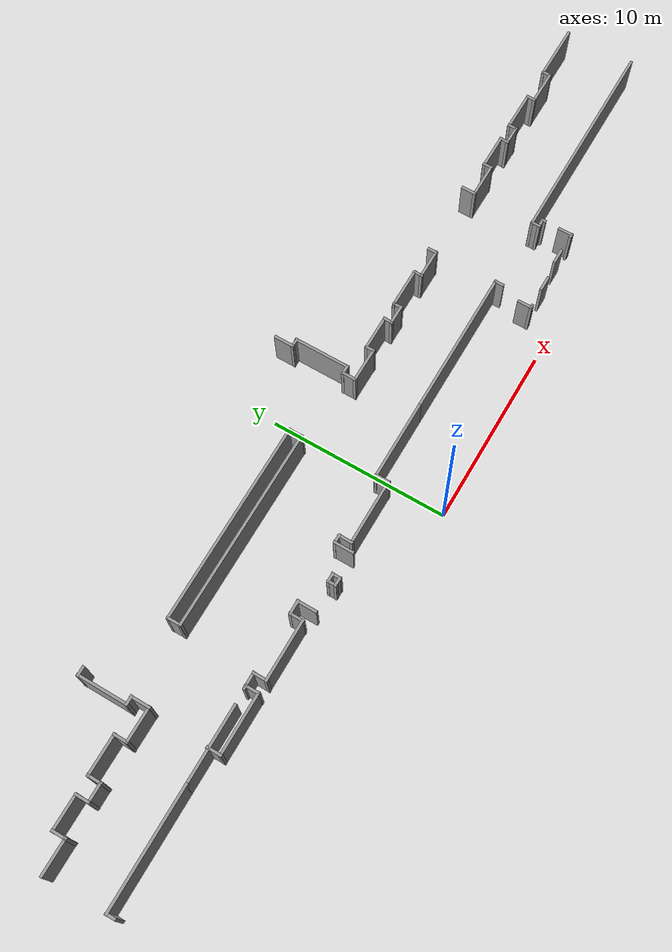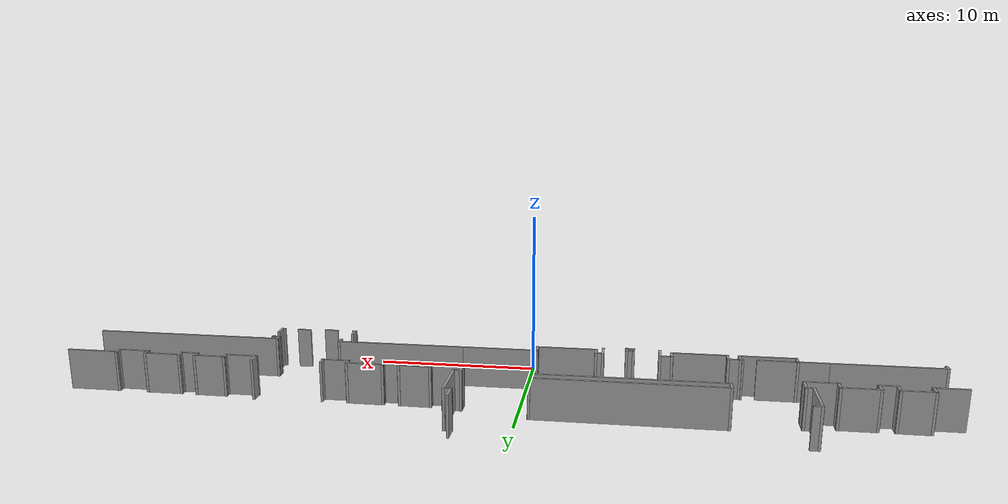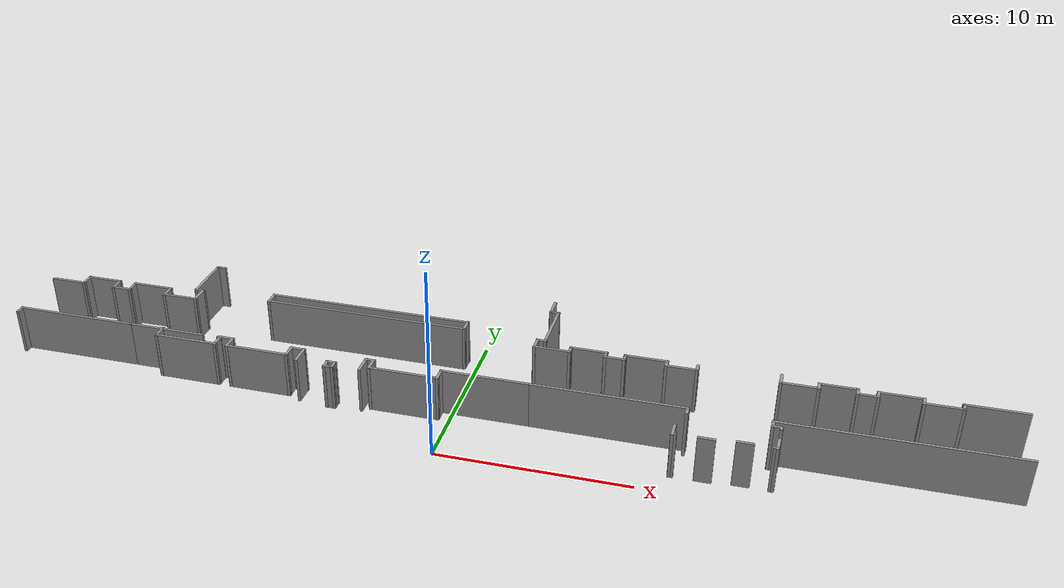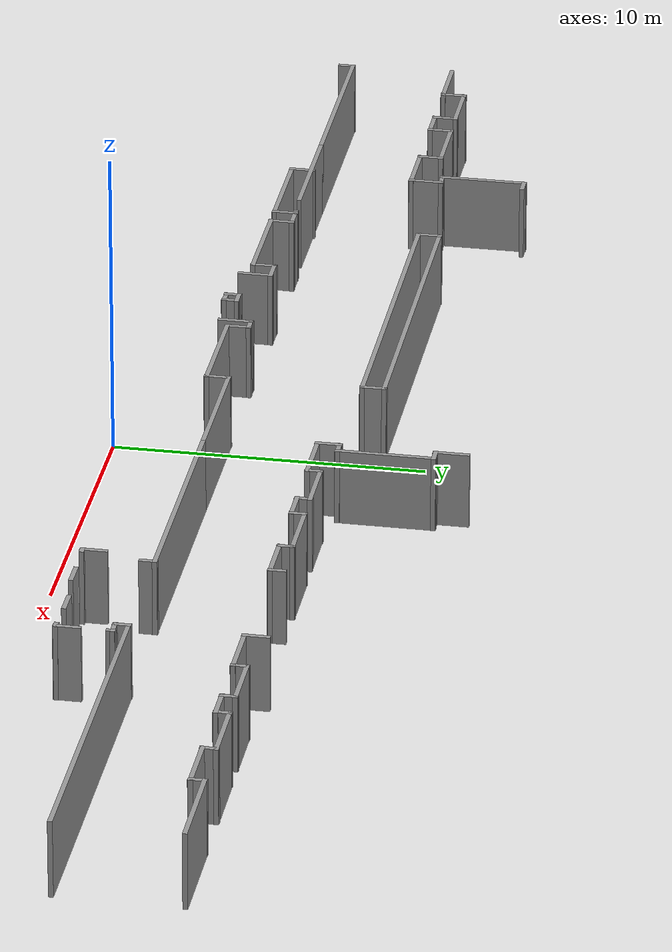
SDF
<sdf version="1.7">
 <model name="TD_n1">
  <pose>-8.28511 -2.84735 0 0 -0 0</pose>
  <link name="Wall_204">
   <collision name="Wall_204_Collision">
    <geometry><box><size>0.58 0.15 2.5</size></box></geometry>
    <pose>0 0 1.25 0 -0 0</pose>
   </collision>
   <visual name="Wall_204_Visual">
    <pose>0 0 1.25 0 -0 0</pose>
    <geometry><box><size>0.58 0.15 2.5</size></box></geometry>
    <material>
     <script><uri>file://media/materials/scripts/gazebo.material</uri><name>Gazebo/Grey</name></script>
     <ambient>1 1 1 1</ambient>
    </material>
    <meta><layer>0</layer></meta>
   </visual>
   <pose>-16.1202 6.23735 0 0 -0 1.5708</pose>
  </link>
  <link name="Wall_205">
   <collision name="Wall_205_Collision">
    <geometry><box><size>6.67 0.15 2.5</size></box></geometry>
    <pose>0 0 1.25 0 -0 0</pose>
   </collision>
   <visual name="Wall_205_Visual">
    <pose>0 0 1.25 0 -0 0</pose>
    <geometry><box><size>6.67 0.15 2.5</size></box></geometry>
    <material>
     <script><uri>file://media/materials/scripts/gazebo.material</uri><name>Gazebo/Grey</name></script>
     <ambient>1 1 1 1</ambient>
    </material>
    <meta><layer>0</layer></meta>
   </visual>
   <pose>-12.8722 6.44037 0 0 -0 0</pose>
  </link>
  <link name="Wall_208">
   <collision name="Wall_208_Collision">
    <geometry><box><size>2.03 0.15 2.5</size></box></geometry>
    <pose>0 0 1.25 0 -0 0</pose>
   </collision>
   <visual name="Wall_208_Visual">
    <pose>0 0 1.25 0 -0 0</pose>
    <geometry><box><size>2.03 0.15 2.5</size></box></geometry>
    <material>
     <script><uri>file://media/materials/scripts/gazebo.material</uri><name>Gazebo/Grey</name></script>
     <ambient>1 1 1 1</ambient>
    </material>
    <meta><layer>0</layer></meta>
   </visual>
   <pose>-15.3129 9.84606 0 0 -0 0</pose>
  </link>
  <link name="Wall_209">
   <collision name="Wall_209_Collision">
    <geometry><box><size>0.87 0.15 2.5</size></box></geometry>
    <pose>0 0 1.25 0 -0 0</pose>
   </collision>
   <visual name="Wall_209_Visual">
    <pose>0 0 1.25 0 -0 0</pose>
    <geometry><box><size>0.87 0.15 2.5</size></box></geometry>
    <material>
     <script><uri>file://media/materials/scripts/gazebo.material</uri><name>Gazebo/Grey</name></script>
     <ambient>1 1 1 1</ambient>
    </material>
    <meta><layer>0</layer></meta>
   </visual>
   <pose>-14.3849 10.1941 0 0 -0 1.5708</pose>
  </link>
  <link name="Wall_210">
   <collision name="Wall_210_Collision">
    <geometry><box><size>2.03 0.15 2.5</size></box></geometry>
    <pose>0 0 1.25 0 -0 0</pose>
   </collision>
   <visual name="Wall_210_Visual">
    <pose>0 0 1.25 0 -0 0</pose>
    <geometry><box><size>2.03 0.15 2.5</size></box></geometry>
    <material>
     <script><uri>file://media/materials/scripts/gazebo.material</uri><name>Gazebo/Grey</name></script>
     <ambient>1 1 1 1</ambient>
    </material>
    <meta><layer>0</layer></meta>
   </visual>
   <pose>-13.4569 10.5421 0 0 -0 0</pose>
  </link>
  <link name="Wall_211">
   <collision name="Wall_211_Collision">
    <geometry><box><size>0.87 0.15 2.5</size></box></geometry>
    <pose>0 0 1.25 0 -0 0</pose>
   </collision>
   <visual name="Wall_211_Visual">
    <pose>0 0 1.25 0 -0 0</pose>
    <geometry><box><size>0.87 0.15 2.5</size></box></geometry>
    <material>
     <script><uri>file://media/materials/scripts/gazebo.material</uri><name>Gazebo/Grey</name></script>
     <ambient>1 1 1 1</ambient>
    </material>
    <meta><layer>0</layer></meta>
   </visual>
   <pose>-12.5289 10.1941 0 0 -0 -1.5708</pose>
  </link>
  <link name="Wall_212">
   <collision name="Wall_212_Collision">
    <geometry><box><size>1.16 0.15 2.5</size></box></geometry>
    <pose>0 0 1.25 0 -0 0</pose>
   </collision>
   <visual name="Wall_212_Visual">
    <pose>0 0 1.25 0 -0 0</pose>
    <geometry><box><size>1.16 0.15 2.5</size></box></geometry>
    <material>
     <script><uri>file://media/materials/scripts/gazebo.material</uri><name>Gazebo/Grey</name></script>
     <ambient>1 1 1 1</ambient>
    </material>
    <meta><layer>0</layer></meta>
   </visual>
   <pose>-12.0359 9.84606 0 0 -0 0</pose>
  </link>
  <link name="Wall_213">
   <collision name="Wall_213_Collision">
    <geometry><box><size>0.87 0.15 2.5</size></box></geometry>
    <pose>0 0 1.25 0 -0 0</pose>
   </collision>
   <visual name="Wall_213_Visual">
    <pose>0 0 1.25 0 -0 0</pose>
    <geometry><box><size>0.87 0.15 2.5</size></box></geometry>
    <material>
     <script><uri>file://media/materials/scripts/gazebo.material</uri><name>Gazebo/Grey</name></script>
     <ambient>1 1 1 1</ambient>
    </material>
    <meta><layer>0</layer></meta>
   </visual>
   <pose>-11.5429 10.1941 0 0 -0 1.5708</pose>
  </link>
  <link name="Wall_214">
   <collision name="Wall_214_Collision">
    <geometry><box><size>2.32 0.15 2.5</size></box></geometry>
    <pose>0 0 1.25 0 -0 0</pose>
   </collision>
   <visual name="Wall_214_Visual">
    <pose>0 0 1.25 0 -0 0</pose>
    <geometry><box><size>2.32 0.15 2.5</size></box></geometry>
    <material>
     <script><uri>file://media/materials/scripts/gazebo.material</uri><name>Gazebo/Grey</name></script>
     <ambient>1 1 1 1</ambient>
    </material>
    <meta><layer>0</layer></meta>
   </visual>
   <pose>-10.4699 10.5421 0 0 -0 0</pose>
  </link>
  <link name="Wall_215">
   <collision name="Wall_215_Collision">
    <geometry><box><size>0.87 0.15 2.5</size></box></geometry>
    <pose>0 0 1.25 0 -0 0</pose>
   </collision>
   <visual name="Wall_215_Visual">
    <pose>0 0 1.25 0 -0 0</pose>
    <geometry><box><size>0.87 0.15 2.5</size></box></geometry>
    <material>
     <script><uri>file://media/materials/scripts/gazebo.material</uri><name>Gazebo/Grey</name></script>
     <ambient>1 1 1 1</ambient>
    </material>
    <meta><layer>0</layer></meta>
   </visual>
   <pose>-9.39689 10.1941 0 0 -0 -1.5708</pose>
  </link>
  <link name="Wall_216">
   <collision name="Wall_216_Collision">
    <geometry><box><size>2.03 0.15 2.5</size></box></geometry>
    <pose>0 0 1.25 0 -0 0</pose>
   </collision>
   <visual name="Wall_216_Visual">
    <pose>0 0 1.25 0 -0 0</pose>
    <geometry><box><size>2.03 0.15 2.5</size></box></geometry>
    <material>
     <script><uri>file://media/materials/scripts/gazebo.material</uri><name>Gazebo/Grey</name></script>
     <ambient>1 1 1 1</ambient>
    </material>
    <meta><layer>0</layer></meta>
   </visual>
   <pose>-8.46889 9.84606 0 0 -0 0</pose>
  </link>
  <link name="Wall_218">
   <collision name="Wall_218_Collision">
    <geometry><box><size>4.35 0.15 2.5</size></box></geometry>
    <pose>0 0 1.25 0 -0 0</pose>
   </collision>
   <visual name="Wall_218_Visual">
    <pose>0 0 1.25 0 -0 0</pose>
    <geometry><box><size>4.35 0.15 2.5</size></box></geometry>
    <material>
     <script><uri>file://media/materials/scripts/gazebo.material</uri><name>Gazebo/Grey</name></script>
     <ambient>1 1 1 1</ambient>
    </material>
    <meta><layer>0</layer></meta>
   </visual>
   <pose>-7.53615 6.44037 0 0 -0 0</pose>
  </link>
  <link name="Wall_220">
   <collision name="Wall_220_Collision">
    <geometry><box><size>0.87 0.15 2.5</size></box></geometry>
    <pose>0 0 1.25 0 -0 0</pose>
   </collision>
   <visual name="Wall_220_Visual">
    <pose>0 0 1.25 0 -0 0</pose>
    <geometry><box><size>0.87 0.15 2.5</size></box></geometry>
    <material>
     <script><uri>file://media/materials/scripts/gazebo.material</uri><name>Gazebo/Grey</name></script>
     <ambient>1 1 1 1</ambient>
    </material>
    <meta><layer>0</layer></meta>
   </visual>
   <pose>-7.72189 6.1425 0 0 -0 -1.5708</pose>
  </link>
  <link name="Wall_221">
   <collision name="Wall_221_Collision">
    <geometry><box><size>3.48 0.15 2.5</size></box></geometry>
    <pose>0 0 1.25 0 -0 0</pose>
   </collision>
   <visual name="Wall_221_Visual">
    <pose>0 0 1.25 0 -0 0</pose>
    <geometry><box><size>3.48 0.15 2.5</size></box></geometry>
    <material>
     <script><uri>file://media/materials/scripts/gazebo.material</uri><name>Gazebo/Grey</name></script>
     <ambient>1 1 1 1</ambient>
    </material>
    <meta><layer>0</layer></meta>
   </visual>
   <pose>-6.06889 5.7945 0 0 -0 0</pose>
  </link>
  <link name="Wall_222">
   <collision name="Wall_222_Collision">
    <geometry><box><size>0.87 0.15 2.5</size></box></geometry>
    <pose>0 0 1.25 0 -0 0</pose>
   </collision>
   <visual name="Wall_222_Visual">
    <pose>0 0 1.25 0 -0 0</pose>
    <geometry><box><size>0.87 0.15 2.5</size></box></geometry>
    <material>
     <script><uri>file://media/materials/scripts/gazebo.material</uri><name>Gazebo/Grey</name></script>
     <ambient>1 1 1 1</ambient>
    </material>
    <meta><layer>0</layer></meta>
   </visual>
   <pose>-4.41589 6.1425 0 0 -0 1.5708</pose>
  </link>
  <link name="Wall_223">
   <collision name="Wall_223_Collision">
    <geometry><box><size>0.29 0.15 2.5</size></box></geometry>
    <pose>0 0 1.25 0 -0 0</pose>
   </collision>
   <visual name="Wall_223_Visual">
    <pose>0 0 1.25 0 -0 0</pose>
    <geometry><box><size>0.29 0.15 2.5</size></box></geometry>
    <material>
     <script><uri>file://media/materials/scripts/gazebo.material</uri><name>Gazebo/Grey</name></script>
     <ambient>1 1 1 1</ambient>
    </material>
    <meta><layer>0</layer></meta>
   </visual>
   <pose>-4.47389 6.49049 0 0 -0 3.14159</pose>
  </link>
  <link name="Wall_225">
   <collision name="Wall_225_Collision">
    <geometry><box><size>1.16 0.15 2.5</size></box></geometry>
    <pose>0 0 1.25 0 -0 0</pose>
   </collision>
   <visual name="Wall_225_Visual">
    <pose>0 0 1.25 0 -0 0</pose>
    <geometry><box><size>1.16 0.15 2.5</size></box></geometry>
    <material>
     <script><uri>file://media/materials/scripts/gazebo.material</uri><name>Gazebo/Grey</name></script>
     <ambient>1 1 1 1</ambient>
    </material>
    <meta><layer>0</layer></meta>
   </visual>
   <pose>-7.54089 10.3391 0 0 -0 1.5708</pose>
  </link>
  <link name="Wall_226">
   <collision name="Wall_226_Collision">
    <geometry><box><size>0.58 0.15 2.5</size></box></geometry>
    <pose>0 0 1.25 0 -0 0</pose>
   </collision>
   <visual name="Wall_226_Visual">
    <pose>0 0 1.25 0 -0 0</pose>
    <geometry><box><size>0.58 0.15 2.5</size></box></geometry>
    <material>
     <script><uri>file://media/materials/scripts/gazebo.material</uri><name>Gazebo/Grey</name></script>
     <ambient>1 1 1 1</ambient>
    </material>
    <meta><layer>0</layer></meta>
   </visual>
   <pose>-7.74389 10.8321 0 0 -0 3.14159</pose>
  </link>
  <link name="Wall_227">
   <collision name="Wall_227_Collision">
    <geometry><box><size>2.9 0.15 2.5</size></box></geometry>
    <pose>0 0 1.25 0 -0 0</pose>
   </collision>
   <visual name="Wall_227_Visual">
    <pose>0 0 1.25 0 -0 0</pose>
    <geometry><box><size>2.9 0.15 2.5</size></box></geometry>
    <material>
     <script><uri>file://media/materials/scripts/gazebo.material</uri><name>Gazebo/Grey</name></script>
     <ambient>1 1 1 1</ambient>
    </material>
    <meta><layer>0</layer></meta>
   </visual>
   <pose>-7.94689 12.1951 0 0 -0 1.5708</pose>
  </link>
  <link name="Wall_228">
   <collision name="Wall_228_Collision">
    <geometry><box><size>0.58 0.15 2.5</size></box></geometry>
    <pose>0 0 1.25 0 -0 0</pose>
   </collision>
   <visual name="Wall_228_Visual">
    <pose>0 0 1.25 0 -0 0</pose>
    <geometry><box><size>0.58 0.15 2.5</size></box></geometry>
    <material>
     <script><uri>file://media/materials/scripts/gazebo.material</uri><name>Gazebo/Grey</name></script>
     <ambient>1 1 1 1</ambient>
    </material>
    <meta><layer>0</layer></meta>
   </visual>
   <pose>-7.74389 13.5581 0 0 -0 0</pose>
  </link>
  <link name="Wall_230">
   <collision name="Wall_230_Collision">
    <geometry><box><size>0.87 0.15 2.5</size></box></geometry>
    <pose>0 0 1.25 0 -0 0</pose>
   </collision>
   <visual name="Wall_230_Visual">
    <pose>0 0 1.25 0 -0 0</pose>
    <geometry><box><size>0.87 0.15 2.5</size></box></geometry>
    <material>
     <script><uri>file://media/materials/scripts/gazebo.material</uri><name>Gazebo/Grey</name></script>
     <ambient>1 1 1 1</ambient>
    </material>
    <meta><layer>0</layer></meta>
   </visual>
   <pose>-4.06789 6.49049 0 0 -0 0</pose>
  </link>
  <link name="Wall_231">
   <collision name="Wall_231_Collision">
    <geometry><box><size>0.87 0.15 2.5</size></box></geometry>
    <pose>0 0 1.25 0 -0 0</pose>
   </collision>
   <visual name="Wall_231_Visual">
    <pose>0 0 1.25 0 -0 0</pose>
    <geometry><box><size>0.87 0.15 2.5</size></box></geometry>
    <material>
     <script><uri>file://media/materials/scripts/gazebo.material</uri><name>Gazebo/Grey</name></script>
     <ambient>1 1 1 1</ambient>
    </material>
    <meta><layer>0</layer></meta>
   </visual>
   <pose>-3.71989 6.1425 0 0 -0 -1.5708</pose>
  </link>
  <link name="Wall_232">
   <collision name="Wall_232_Collision">
    <geometry><box><size>3.48 0.15 2.5</size></box></geometry>
    <pose>0 0 1.25 0 -0 0</pose>
   </collision>
   <visual name="Wall_232_Visual">
    <pose>0 0 1.25 0 -0 0</pose>
    <geometry><box><size>3.48 0.15 2.5</size></box></geometry>
    <material>
     <script><uri>file://media/materials/scripts/gazebo.material</uri><name>Gazebo/Grey</name></script>
     <ambient>1 1 1 1</ambient>
    </material>
    <meta><layer>0</layer></meta>
   </visual>
   <pose>-2.06689 5.7945 0 0 -0 0</pose>
  </link>
  <link name="Wall_233">
   <collision name="Wall_233_Collision">
    <geometry><box><size>0.87 0.15 2.5</size></box></geometry>
    <pose>0 0 1.25 0 -0 0</pose>
   </collision>
   <visual name="Wall_233_Visual">
    <pose>0 0 1.25 0 -0 0</pose>
    <geometry><box><size>0.87 0.15 2.5</size></box></geometry>
    <material>
     <script><uri>file://media/materials/scripts/gazebo.material</uri><name>Gazebo/Grey</name></script>
     <ambient>1 1 1 1</ambient>
    </material>
    <meta><layer>0</layer></meta>
   </visual>
   <pose>-0.413887 6.1425 0 0 -0 1.5708</pose>
  </link>
  <link name="Wall_234">
   <collision name="Wall_234_Collision">
    <geometry><box><size>0.87 0.15 2.5</size></box></geometry>
    <pose>0 0 1.25 0 -0 0</pose>
   </collision>
   <visual name="Wall_234_Visual">
    <pose>0 0 1.25 0 -0 0</pose>
    <geometry><box><size>0.87 0.15 2.5</size></box></geometry>
    <material>
     <script><uri>file://media/materials/scripts/gazebo.material</uri><name>Gazebo/Grey</name></script>
     <ambient>1 1 1 1</ambient>
    </material>
    <meta><layer>0</layer></meta>
   </visual>
   <pose>-0.0658868 6.49049 0 0 -0 0</pose>
  </link>
  <link name="Wall_235">
   <collision name="Wall_235_Collision">
    <geometry><box><size>1.16 0.15 2.5</size></box></geometry>
    <pose>0 0 1.25 0 -0 0</pose>
   </collision>
   <visual name="Wall_235_Visual">
    <pose>0 0 1.25 0 -0 0</pose>
    <geometry><box><size>1.16 0.15 2.5</size></box></geometry>
    <material>
     <script><uri>file://media/materials/scripts/gazebo.material</uri><name>Gazebo/Grey</name></script>
     <ambient>1 1 1 1</ambient>
    </material>
    <meta><layer>0</layer></meta>
   </visual>
   <pose>0.282113 5.9975 0 0 -0 -1.5708</pose>
  </link>
  <link name="Wall_237">
   <collision name="Wall_237_Collision">
    <geometry><box><size>0.58 0.15 2.5</size></box></geometry>
    <pose>0 0 1.25 0 -0 0</pose>
   </collision>
   <visual name="Wall_237_Visual">
    <pose>0 0 1.25 0 -0 0</pose>
    <geometry><box><size>0.58 0.15 2.5</size></box></geometry>
    <material>
     <script><uri>file://media/materials/scripts/gazebo.material</uri><name>Gazebo/Grey</name></script>
     <ambient>1 1 1 1</ambient>
    </material>
    <meta><layer>0</layer></meta>
   </visual>
   <pose>2.0707 5.73809 0 0 -0 0</pose>
  </link>
  <link name="Wall_238">
   <collision name="Wall_238_Collision">
    <geometry><box><size>0.58 0.15 2.5</size></box></geometry>
    <pose>0 0 1.25 0 -0 0</pose>
   </collision>
   <visual name="Wall_238_Visual">
    <pose>0 0 1.25 0 -0 0</pose>
    <geometry><box><size>0.58 0.15 2.5</size></box></geometry>
    <material>
     <script><uri>file://media/materials/scripts/gazebo.material</uri><name>Gazebo/Grey</name></script>
     <ambient>1 1 1 1</ambient>
    </material>
    <meta><layer>0</layer></meta>
   </visual>
   <pose>2.2737 5.53509 0 0 -0 -1.5708</pose>
  </link>
  <link name="Wall_239">
   <collision name="Wall_239_Collision">
    <geometry><box><size>0.58 0.15 2.5</size></box></geometry>
    <pose>0 0 1.25 0 -0 0</pose>
   </collision>
   <visual name="Wall_239_Visual">
    <pose>0 0 1.25 0 -0 0</pose>
    <geometry><box><size>0.58 0.15 2.5</size></box></geometry>
    <material>
     <script><uri>file://media/materials/scripts/gazebo.material</uri><name>Gazebo/Grey</name></script>
     <ambient>1 1 1 1</ambient>
    </material>
    <meta><layer>0</layer></meta>
   </visual>
   <pose>2.0707 5.33209 0 0 -0 3.14159</pose>
  </link>
  <link name="Wall_240">
   <collision name="Wall_240_Collision">
    <geometry><box><size>0.58 0.15 2.5</size></box></geometry>
    <pose>0 0 1.25 0 -0 0</pose>
   </collision>
   <visual name="Wall_240_Visual">
    <pose>0 0 1.25 0 -0 0</pose>
    <geometry><box><size>0.58 0.15 2.5</size></box></geometry>
    <material>
     <script><uri>file://media/materials/scripts/gazebo.material</uri><name>Gazebo/Grey</name></script>
     <ambient>1 1 1 1</ambient>
    </material>
    <meta><layer>0</layer></meta>
   </visual>
   <pose>1.8677 5.53509 0 0 -0 1.5708</pose>
  </link>
  <link name="Wall_242">
   <collision name="Wall_242_Collision">
    <geometry><box><size>1.16 0.15 2.5</size></box></geometry>
    <pose>0 0 1.25 0 -0 0</pose>
   </collision>
   <visual name="Wall_242_Visual">
    <pose>0 0 1.25 0 -0 0</pose>
    <geometry><box><size>1.16 0.15 2.5</size></box></geometry>
    <material>
     <script><uri>file://media/materials/scripts/gazebo.material</uri><name>Gazebo/Grey</name></script>
     <ambient>1 1 1 1</ambient>
    </material>
    <meta><layer>0</layer></meta>
   </visual>
   <pose>3.69517 5.96495 0 0 -0 1.5708</pose>
  </link>
  <link name="Wall_243">
   <collision name="Wall_243_Collision">
    <geometry><box><size>0.58 0.15 2.5</size></box></geometry>
    <pose>0 0 1.25 0 -0 0</pose>
   </collision>
   <visual name="Wall_243_Visual">
    <pose>0 0 1.25 0 -0 0</pose>
    <geometry><box><size>0.58 0.15 2.5</size></box></geometry>
    <material>
     <script><uri>file://media/materials/scripts/gazebo.material</uri><name>Gazebo/Grey</name></script>
     <ambient>1 1 1 1</ambient>
    </material>
    <meta><layer>0</layer></meta>
   </visual>
   <pose>3.89817 6.45795 0 0 -0 0</pose>
  </link>
  <link name="Wall_244">
   <collision name="Wall_244_Collision">
    <geometry><box><size>0.87 0.15 2.5</size></box></geometry>
    <pose>0 0 1.25 0 -0 0</pose>
   </collision>
   <visual name="Wall_244_Visual">
    <pose>0 0 1.25 0 -0 0</pose>
    <geometry><box><size>0.87 0.15 2.5</size></box></geometry>
    <material>
     <script><uri>file://media/materials/scripts/gazebo.material</uri><name>Gazebo/Grey</name></script>
     <ambient>1 1 1 1</ambient>
    </material>
    <meta><layer>0</layer></meta>
   </visual>
   <pose>4.10117 6.10995 0 0 -0 -1.5708</pose>
  </link>
  <link name="Wall_245">
   <collision name="Wall_245_Collision">
    <geometry><box><size>3.77 0.15 2.5</size></box></geometry>
    <pose>0 0 1.25 0 -0 0</pose>
   </collision>
   <visual name="Wall_245_Visual">
    <pose>0 0 1.25 0 -0 0</pose>
    <geometry><box><size>3.77 0.15 2.5</size></box></geometry>
    <material>
     <script><uri>file://media/materials/scripts/gazebo.material</uri><name>Gazebo/Grey</name></script>
     <ambient>1 1 1 1</ambient>
    </material>
    <meta><layer>0</layer></meta>
   </visual>
   <pose>5.89917 5.76195 0 0 -0 0</pose>
  </link>
  <link name="Wall_246">
   <collision name="Wall_246_Collision">
    <geometry><box><size>0.87 0.15 2.5</size></box></geometry>
    <pose>0 0 1.25 0 -0 0</pose>
   </collision>
   <visual name="Wall_246_Visual">
    <pose>0 0 1.25 0 -0 0</pose>
    <geometry><box><size>0.87 0.15 2.5</size></box></geometry>
    <material>
     <script><uri>file://media/materials/scripts/gazebo.material</uri><name>Gazebo/Grey</name></script>
     <ambient>1 1 1 1</ambient>
    </material>
    <meta><layer>0</layer></meta>
   </visual>
   <pose>7.69717 6.10995 0 0 -0 1.5708</pose>
  </link>
  <link name="Wall_247">
   <collision name="Wall_247_Collision">
    <geometry><box><size>4.64 0.15 2.5</size></box></geometry>
    <pose>0 0 1.25 0 -0 0</pose>
   </collision>
   <visual name="Wall_247_Visual">
    <pose>0 0 1.25 0 -0 0</pose>
    <geometry><box><size>4.64 0.15 2.5</size></box></geometry>
    <material>
     <script><uri>file://media/materials/scripts/gazebo.material</uri><name>Gazebo/Grey</name></script>
     <ambient>1 1 1 1</ambient>
    </material>
    <meta><layer>0</layer></meta>
   </visual>
   <pose>9.93017 6.45795 0 0 -0 0</pose>
  </link>
  <link name="Wall_249">
   <collision name="Wall_249_Collision">
    <geometry><box><size>0.87 0.15 2.5</size></box></geometry>
    <pose>0 0 1.25 0 -0 0</pose>
   </collision>
   <visual name="Wall_249_Visual">
    <pose>0 0 1.25 0 -0 0</pose>
    <geometry><box><size>0.87 0.15 2.5</size></box></geometry>
    <material>
     <script><uri>file://media/materials/scripts/gazebo.material</uri><name>Gazebo/Grey</name></script>
     <ambient>1 1 1 1</ambient>
    </material>
    <meta><layer>0</layer></meta>
   </visual>
   <pose>-3.52596 11.0717 0 0 -0 1.5708</pose>
  </link>
  <link name="Wall_250">
   <collision name="Wall_250_Collision">
    <geometry><box><size>11.31 0.15 2.5</size></box></geometry>
    <pose>0 0 1.25 0 -0 0</pose>
   </collision>
   <visual name="Wall_250_Visual">
    <pose>0 0 1.25 0 -0 0</pose>
    <geometry><box><size>11.31 0.15 2.5</size></box></geometry>
    <material>
     <script><uri>file://media/materials/scripts/gazebo.material</uri><name>Gazebo/Grey</name></script>
     <ambient>1 1 1 1</ambient>
    </material>
    <meta><layer>0</layer></meta>
   </visual>
   <pose>2.04204 11.4197 0 0 -0 0</pose>
  </link>
  <link name="Wall_251">
   <collision name="Wall_251_Collision">
    <geometry><box><size>0.87 0.15 2.5</size></box></geometry>
    <pose>0 0 1.25 0 -0 0</pose>
   </collision>
   <visual name="Wall_251_Visual">
    <pose>0 0 1.25 0 -0 0</pose>
    <geometry><box><size>0.87 0.15 2.5</size></box></geometry>
    <material>
     <script><uri>file://media/materials/scripts/gazebo.material</uri><name>Gazebo/Grey</name></script>
     <ambient>1 1 1 1</ambient>
    </material>
    <meta><layer>0</layer></meta>
   </visual>
   <pose>7.61004 11.0717 0 0 -0 -1.5708</pose>
  </link>
  <link name="Wall_252">
   <collision name="Wall_252_Collision">
    <geometry><box><size>11.31 0.15 2.5</size></box></geometry>
    <pose>0 0 1.25 0 -0 0</pose>
   </collision>
   <visual name="Wall_252_Visual">
    <pose>0 0 1.25 0 -0 0</pose>
    <geometry><box><size>11.31 0.15 2.5</size></box></geometry>
    <material>
     <script><uri>file://media/materials/scripts/gazebo.material</uri><name>Gazebo/Grey</name></script>
     <ambient>1 1 1 1</ambient>
    </material>
    <meta><layer>0</layer></meta>
   </visual>
   <pose>2.04204 10.7237 0 0 -0 3.14159</pose>
  </link>
  <link name="Wall_254">
   <collision name="Wall_254_Collision">
    <geometry><box><size>1.16 0.15 2.5</size></box></geometry>
    <pose>0 0 1.25 0 -0 0</pose>
   </collision>
   <visual name="Wall_254_Visual">
    <pose>0 0 1.25 0 -0 0</pose>
    <geometry><box><size>1.16 0.15 2.5</size></box></geometry>
    <material>
     <script><uri>file://media/materials/scripts/gazebo.material</uri><name>Gazebo/Grey</name></script>
     <ambient>1 1 1 1</ambient>
    </material>
    <meta><layer>0</layer></meta>
   </visual>
   <pose>11.626 14.1873 0 0 -0 -1.5708</pose>
  </link>
  <link name="Wall_255">
   <collision name="Wall_255_Collision">
    <geometry><box><size>0.58 0.15 2.5</size></box></geometry>
    <pose>0 0 1.25 0 -0 0</pose>
   </collision>
   <visual name="Wall_255_Visual">
    <pose>0 0 1.25 0 -0 0</pose>
    <geometry><box><size>0.58 0.15 2.5</size></box></geometry>
    <material>
     <script><uri>file://media/materials/scripts/gazebo.material</uri><name>Gazebo/Grey</name></script>
     <ambient>1 1 1 1</ambient>
    </material>
    <meta><layer>0</layer></meta>
   </visual>
   <pose>11.829 13.6943 0 0 -0 0</pose>
  </link>
  <link name="Wall_256">
   <collision name="Wall_256_Collision">
    <geometry><box><size>3.19 0.15 2.5</size></box></geometry>
    <pose>0 0 1.25 0 -0 0</pose>
   </collision>
   <visual name="Wall_256_Visual">
    <pose>0 0 1.25 0 -0 0</pose>
    <geometry><box><size>3.19 0.15 2.5</size></box></geometry>
    <material>
     <script><uri>file://media/materials/scripts/gazebo.material</uri><name>Gazebo/Grey</name></script>
     <ambient>1 1 1 1</ambient>
    </material>
    <meta><layer>0</layer></meta>
   </visual>
   <pose>12.032 12.1863 0 0 -0 -1.5708</pose>
  </link>
  <link name="Wall_257">
   <collision name="Wall_257_Collision">
    <geometry><box><size>0.58 0.15 2.5</size></box></geometry>
    <pose>0 0 1.25 0 -0 0</pose>
   </collision>
   <visual name="Wall_257_Visual">
    <pose>0 0 1.25 0 -0 0</pose>
    <geometry><box><size>0.58 0.15 2.5</size></box></geometry>
    <material>
     <script><uri>file://media/materials/scripts/gazebo.material</uri><name>Gazebo/Grey</name></script>
     <ambient>1 1 1 1</ambient>
    </material>
    <meta><layer>0</layer></meta>
   </visual>
   <pose>11.829 10.6782 0 0 -0 3.14159</pose>
  </link>
  <link name="Wall_258">
   <collision name="Wall_258_Collision">
    <geometry><box><size>0.87 0.15 2.5</size></box></geometry>
    <pose>0 0 1.25 0 -0 0</pose>
   </collision>
   <visual name="Wall_258_Visual">
    <pose>0 0 1.25 0 -0 0</pose>
    <geometry><box><size>0.87 0.15 2.5</size></box></geometry>
    <material>
     <script><uri>file://media/materials/scripts/gazebo.material</uri><name>Gazebo/Grey</name></script>
     <ambient>1 1 1 1</ambient>
    </material>
    <meta><layer>0</layer></meta>
   </visual>
   <pose>11.626 10.3302 0 0 -0 -1.5708</pose>
  </link>
  <link name="Wall_259">
   <collision name="Wall_259_Collision">
    <geometry><box><size>2.03 0.15 2.5</size></box></geometry>
    <pose>0 0 1.25 0 -0 0</pose>
   </collision>
   <visual name="Wall_259_Visual">
    <pose>0 0 1.25 0 -0 0</pose>
    <geometry><box><size>2.03 0.15 2.5</size></box></geometry>
    <material>
     <script><uri>file://media/materials/scripts/gazebo.material</uri><name>Gazebo/Grey</name></script>
     <ambient>1 1 1 1</ambient>
    </material>
    <meta><layer>0</layer></meta>
   </visual>
   <pose>12.554 9.98223 0 0 -0 0</pose>
  </link>
  <link name="Wall_260">
   <collision name="Wall_260_Collision">
    <geometry><box><size>0.58 0.15 2.5</size></box></geometry>
    <pose>0 0 1.25 0 -0 0</pose>
   </collision>
   <visual name="Wall_260_Visual">
    <pose>0 0 1.25 0 -0 0</pose>
    <geometry><box><size>0.58 0.15 2.5</size></box></geometry>
    <material>
     <script><uri>file://media/materials/scripts/gazebo.material</uri><name>Gazebo/Grey</name></script>
     <ambient>1 1 1 1</ambient>
    </material>
    <meta><layer>0</layer></meta>
   </visual>
   <pose>13.482 10.1852 0 0 -0 1.5708</pose>
  </link>
  <link name="Wall_261">
   <collision name="Wall_261_Collision">
    <geometry><box><size>2.03 0.15 2.5</size></box></geometry>
    <pose>0 0 1.25 0 -0 0</pose>
   </collision>
   <visual name="Wall_261_Visual">
    <pose>0 0 1.25 0 -0 0</pose>
    <geometry><box><size>2.03 0.15 2.5</size></box></geometry>
    <material>
     <script><uri>file://media/materials/scripts/gazebo.material</uri><name>Gazebo/Grey</name></script>
     <ambient>1 1 1 1</ambient>
    </material>
    <meta><layer>0</layer></meta>
   </visual>
   <pose>14.41 10.3882 0 0 -0 0</pose>
  </link>
  <link name="Wall_262">
   <collision name="Wall_262_Collision">
    <geometry><box><size>0.58 0.15 2.5</size></box></geometry>
    <pose>0 0 1.25 0 -0 0</pose>
   </collision>
   <visual name="Wall_262_Visual">
    <pose>0 0 1.25 0 -0 0</pose>
    <geometry><box><size>0.58 0.15 2.5</size></box></geometry>
    <material>
     <script><uri>file://media/materials/scripts/gazebo.material</uri><name>Gazebo/Grey</name></script>
     <ambient>1 1 1 1</ambient>
    </material>
    <meta><layer>0</layer></meta>
   </visual>
   <pose>15.338 10.1852 0 0 -0 -1.5708</pose>
  </link>
  <link name="Wall_263">
   <collision name="Wall_263_Collision">
    <geometry><box><size>1.16 0.15 2.5</size></box></geometry>
    <pose>0 0 1.25 0 -0 0</pose>
   </collision>
   <visual name="Wall_263_Visual">
    <pose>0 0 1.25 0 -0 0</pose>
    <geometry><box><size>1.16 0.15 2.5</size></box></geometry>
    <material>
     <script><uri>file://media/materials/scripts/gazebo.material</uri><name>Gazebo/Grey</name></script>
     <ambient>1 1 1 1</ambient>
    </material>
    <meta><layer>0</layer></meta>
   </visual>
   <pose>15.831 9.98223 0 0 -0 0</pose>
  </link>
  <link name="Wall_264">
   <collision name="Wall_264_Collision">
    <geometry><box><size>0.58 0.15 2.5</size></box></geometry>
    <pose>0 0 1.25 0 -0 0</pose>
   </collision>
   <visual name="Wall_264_Visual">
    <pose>0 0 1.25 0 -0 0</pose>
    <geometry><box><size>0.58 0.15 2.5</size></box></geometry>
    <material>
     <script><uri>file://media/materials/scripts/gazebo.material</uri><name>Gazebo/Grey</name></script>
     <ambient>1 1 1 1</ambient>
    </material>
    <meta><layer>0</layer></meta>
   </visual>
   <pose>16.324 10.1852 0 0 -0 1.5708</pose>
  </link>
  <link name="Wall_265">
   <collision name="Wall_265_Collision">
    <geometry><box><size>2.32 0.15 2.5</size></box></geometry>
    <pose>0 0 1.25 0 -0 0</pose>
   </collision>
   <visual name="Wall_265_Visual">
    <pose>0 0 1.25 0 -0 0</pose>
    <geometry><box><size>2.32 0.15 2.5</size></box></geometry>
    <material>
     <script><uri>file://media/materials/scripts/gazebo.material</uri><name>Gazebo/Grey</name></script>
     <ambient>1 1 1 1</ambient>
    </material>
    <meta><layer>0</layer></meta>
   </visual>
   <pose>17.397 10.3882 0 0 -0 0</pose>
  </link>
  <link name="Wall_266">
   <collision name="Wall_266_Collision">
    <geometry><box><size>0.58 0.15 2.5</size></box></geometry>
    <pose>0 0 1.25 0 -0 0</pose>
   </collision>
   <visual name="Wall_266_Visual">
    <pose>0 0 1.25 0 -0 0</pose>
    <geometry><box><size>0.58 0.15 2.5</size></box></geometry>
    <material>
     <script><uri>file://media/materials/scripts/gazebo.material</uri><name>Gazebo/Grey</name></script>
     <ambient>1 1 1 1</ambient>
    </material>
    <meta><layer>0</layer></meta>
   </visual>
   <pose>18.47 10.1852 0 0 -0 -1.5708</pose>
  </link>
  <link name="Wall_267">
   <collision name="Wall_267_Collision">
    <geometry><box><size>1.74 0.15 2.5</size></box></geometry>
    <pose>0 0 1.25 0 -0 0</pose>
   </collision>
   <visual name="Wall_267_Visual">
    <pose>0 0 1.25 0 -0 0</pose>
    <geometry><box><size>1.74 0.15 2.5</size></box></geometry>
    <material>
     <script><uri>file://media/materials/scripts/gazebo.material</uri><name>Gazebo/Grey</name></script>
     <ambient>1 1 1 1</ambient>
    </material>
    <meta><layer>0</layer></meta>
   </visual>
   <pose>19.253 9.98223 0 0 -0 0</pose>
  </link>
  <link name="Wall_268">
   <collision name="Wall_268_Collision">
    <geometry><box><size>0.58 0.15 2.5</size></box></geometry>
    <pose>0 0 1.25 0 -0 0</pose>
   </collision>
   <visual name="Wall_268_Visual">
    <pose>0 0 1.25 0 -0 0</pose>
    <geometry><box><size>0.58 0.15 2.5</size></box></geometry>
    <material>
     <script><uri>file://media/materials/scripts/gazebo.material</uri><name>Gazebo/Grey</name></script>
     <ambient>1 1 1 1</ambient>
    </material>
    <meta><layer>0</layer></meta>
   </visual>
   <pose>20.036 10.1852 0 0 -0 1.5708</pose>
  </link>
  <link name="Wall_270">
   <collision name="Wall_270_Collision">
    <geometry><box><size>8.12 0.15 2.5</size></box></geometry>
    <pose>0 0 1.25 0 -0 0</pose>
   </collision>
   <visual name="Wall_270_Visual">
    <pose>0 0 1.25 0 -0 0</pose>
    <geometry><box><size>8.12 0.15 2.5</size></box></geometry>
    <material>
     <script><uri>file://media/materials/scripts/gazebo.material</uri><name>Gazebo/Grey</name></script>
     <ambient>1 1 1 1</ambient>
    </material>
    <meta><layer>0</layer></meta>
   </visual>
   <pose>16.1362 6.45795 0 0 -0 0</pose>
  </link>
  <link name="Wall_271">
   <collision name="Wall_271_Collision">
    <geometry><box><size>0.58 0.15 2.5</size></box></geometry>
    <pose>0 0 1.25 0 -0 0</pose>
   </collision>
   <visual name="Wall_271_Visual">
    <pose>0 0 1.25 0 -0 0</pose>
    <geometry><box><size>0.58 0.15 2.5</size></box></geometry>
    <material>
     <script><uri>file://media/materials/scripts/gazebo.material</uri><name>Gazebo/Grey</name></script>
     <ambient>1 1 1 1</ambient>
    </material>
    <meta><layer>0</layer></meta>
   </visual>
   <pose>20.1092 6.25495 0 0 -0 -1.5708</pose>
  </link>
  <link name="Wall_273">
   <collision name="Wall_273_Collision">
    <geometry><box><size>0.87 0.15 2.5</size></box></geometry>
    <pose>0 0 1.25 0 -0 0</pose>
   </collision>
   <visual name="Wall_273_Visual">
    <pose>0 0 1.25 0 -0 0</pose>
    <geometry><box><size>0.87 0.15 2.5</size></box></geometry>
    <material>
     <script><uri>file://media/materials/scripts/gazebo.material</uri><name>Gazebo/Grey</name></script>
     <ambient>1 1 1 1</ambient>
    </material>
    <meta><layer>0</layer></meta>
   </visual>
   <pose>19.7165 4.50297 0 0 -0 -1.5708</pose>
  </link>
  <link name="Wall_274">
   <collision name="Wall_274_Collision">
    <geometry><box><size>0.29 0.15 2.5</size></box></geometry>
    <pose>0 0 1.25 0 -0 0</pose>
   </collision>
   <visual name="Wall_274_Visual">
    <pose>0 0 1.25 0 -0 0</pose>
    <geometry><box><size>0.29 0.15 2.5</size></box></geometry>
    <material>
     <script><uri>file://media/materials/scripts/gazebo.material</uri><name>Gazebo/Grey</name></script>
     <ambient>1 1 1 1</ambient>
    </material>
    <meta><layer>0</layer></meta>
   </visual>
   <pose>19.7745 4.15498 0 0 -0 0</pose>
  </link>
  <link name="Wall_276">
   <collision name="Wall_276_Collision">
    <geometry><box><size>0.87 0.15 2.5</size></box></geometry>
    <pose>0 0 1.25 0 -0 0</pose>
   </collision>
   <visual name="Wall_276_Visual">
    <pose>0 0 1.25 0 -0 0</pose>
    <geometry><box><size>0.87 0.15 2.5</size></box></geometry>
    <material>
     <script><uri>file://media/materials/scripts/gazebo.material</uri><name>Gazebo/Grey</name></script>
     <ambient>1 1 1 1</ambient>
    </material>
    <meta><layer>0</layer></meta>
   </visual>
   <pose>21.3064 4.19451 0 0 -0 0</pose>
  </link>
  <link name="Wall_278">
   <collision name="Wall_278_Collision">
    <geometry><box><size>0.87 0.15 2.5</size></box></geometry>
    <pose>0 0 1.25 0 -0 0</pose>
   </collision>
   <visual name="Wall_278_Visual">
    <pose>0 0 1.25 0 -0 0</pose>
    <geometry><box><size>0.87 0.15 2.5</size></box></geometry>
    <material>
     <script><uri>file://media/materials/scripts/gazebo.material</uri><name>Gazebo/Grey</name></script>
     <ambient>1 1 1 1</ambient>
    </material>
    <meta><layer>0</layer></meta>
   </visual>
   <pose>23.0806 4.33645 0 0 -0 0</pose>
  </link>
  <link name="Wall_280">
   <collision name="Wall_280_Collision">
    <geometry><box><size>0.29 0.15 2.5</size></box></geometry>
    <pose>0 0 1.25 0 -0 0</pose>
   </collision>
   <visual name="Wall_280_Visual">
    <pose>0 0 1.25 0 -0 0</pose>
    <geometry><box><size>0.29 0.15 2.5</size></box></geometry>
    <material>
     <script><uri>file://media/materials/scripts/gazebo.material</uri><name>Gazebo/Grey</name></script>
     <ambient>1 1 1 1</ambient>
    </material>
    <meta><layer>0</layer></meta>
   </visual>
   <pose>24.5117 4.30097 0 0 -0 0</pose>
  </link>
  <link name="Wall_281">
   <collision name="Wall_281_Collision">
    <geometry><box><size>0.87 0.15 2.5</size></box></geometry>
    <pose>0 0 1.25 0 -0 0</pose>
   </collision>
   <visual name="Wall_281_Visual">
    <pose>0 0 1.25 0 -0 0</pose>
    <geometry><box><size>0.87 0.15 2.5</size></box></geometry>
    <material>
     <script><uri>file://media/materials/scripts/gazebo.material</uri><name>Gazebo/Grey</name></script>
     <ambient>1 1 1 1</ambient>
    </material>
    <meta><layer>0</layer></meta>
   </visual>
   <pose>24.5697 4.64897 0 0 -0 1.5708</pose>
  </link>
  <link name="Wall_283">
   <collision name="Wall_283_Collision">
    <geometry><box><size>0.29 0.15 2.5</size></box></geometry>
    <pose>0 0 1.25 0 -0 0</pose>
   </collision>
   <visual name="Wall_283_Visual">
    <pose>0 0 1.25 0 -0 0</pose>
    <geometry><box><size>0.29 0.15 2.5</size></box></geometry>
    <material>
     <script><uri>file://media/materials/scripts/gazebo.material</uri><name>Gazebo/Grey</name></script>
     <ambient>1 1 1 1</ambient>
    </material>
    <meta><layer>0</layer></meta>
   </visual>
   <pose>24.5778 5.97351 0 0 -0 1.5708</pose>
  </link>
  <link name="Wall_284">
   <collision name="Wall_284_Collision">
    <geometry><box><size>0.58 0.15 2.5</size></box></geometry>
    <pose>0 0 1.25 0 -0 0</pose>
   </collision>
   <visual name="Wall_284_Visual">
    <pose>0 0 1.25 0 -0 0</pose>
    <geometry><box><size>0.58 0.15 2.5</size></box></geometry>
    <material>
     <script><uri>file://media/materials/scripts/gazebo.material</uri><name>Gazebo/Grey</name></script>
     <ambient>1 1 1 1</ambient>
    </material>
    <meta><layer>0</layer></meta>
   </visual>
   <pose>24.3748 6.03151 0 0 -0 3.14159</pose>
  </link>
  <link name="Wall_285">
   <collision name="Wall_285_Collision">
    <geometry><box><size>0.58 0.15 2.5</size></box></geometry>
    <pose>0 0 1.25 0 -0 0</pose>
   </collision>
   <visual name="Wall_285_Visual">
    <pose>0 0 1.25 0 -0 0</pose>
    <geometry><box><size>0.58 0.15 2.5</size></box></geometry>
    <material>
     <script><uri>file://media/materials/scripts/gazebo.material</uri><name>Gazebo/Grey</name></script>
     <ambient>1 1 1 1</ambient>
    </material>
    <meta><layer>0</layer></meta>
   </visual>
   <pose>24.1718 6.23451 0 0 -0 1.5708</pose>
  </link>
  <link name="Wall_286">
   <collision name="Wall_286_Collision">
    <geometry><box><size>11.89 0.15 2.5</size></box></geometry>
    <pose>0 0 1.25 0 -0 0</pose>
   </collision>
   <visual name="Wall_286_Visual">
    <pose>0 0 1.25 0 -0 0</pose>
    <geometry><box><size>11.89 0.15 2.5</size></box></geometry>
    <material>
     <script><uri>file://media/materials/scripts/gazebo.material</uri><name>Gazebo/Grey</name></script>
     <ambient>1 1 1 1</ambient>
    </material>
    <meta><layer>0</layer></meta>
   </visual>
   <pose>30.0298 6.43751 0 0 -0 0</pose>
  </link>
  <link name="Wall_288">
   <collision name="Wall_288_Collision">
    <geometry><box><size>0.87 0.15 2.5</size></box></geometry>
    <pose>0 0 1.25 0 -0 0</pose>
   </collision>
   <visual name="Wall_288_Visual">
    <pose>0 0 1.25 0 -0 0</pose>
    <geometry><box><size>0.87 0.15 2.5</size></box></geometry>
    <material>
     <script><uri>file://media/materials/scripts/gazebo.material</uri><name>Gazebo/Grey</name></script>
     <ambient>1 1 1 1</ambient>
    </material>
    <meta><layer>0</layer></meta>
   </visual>
   <pose>24.1875 10.287 0 0 -0 -1.5708</pose>
  </link>
  <link name="Wall_289">
   <collision name="Wall_289_Collision">
    <geometry><box><size>2.03 0.15 2.5</size></box></geometry>
    <pose>0 0 1.25 0 -0 0</pose>
   </collision>
   <visual name="Wall_289_Visual">
    <pose>0 0 1.25 0 -0 0</pose>
    <geometry><box><size>2.03 0.15 2.5</size></box></geometry>
    <material>
     <script><uri>file://media/materials/scripts/gazebo.material</uri><name>Gazebo/Grey</name></script>
     <ambient>1 1 1 1</ambient>
    </material>
    <meta><layer>0</layer></meta>
   </visual>
   <pose>25.1155 9.93897 0 0 -0 0</pose>
  </link>
  <link name="Wall_290">
   <collision name="Wall_290_Collision">
    <geometry><box><size>0.58 0.15 2.5</size></box></geometry>
    <pose>0 0 1.25 0 -0 0</pose>
   </collision>
   <visual name="Wall_290_Visual">
    <pose>0 0 1.25 0 -0 0</pose>
    <geometry><box><size>0.58 0.15 2.5</size></box></geometry>
    <material>
     <script><uri>file://media/materials/scripts/gazebo.material</uri><name>Gazebo/Grey</name></script>
     <ambient>1 1 1 1</ambient>
    </material>
    <meta><layer>0</layer></meta>
   </visual>
   <pose>26.0435 10.142 0 0 -0 1.5708</pose>
  </link>
  <link name="Wall_291">
   <collision name="Wall_291_Collision">
    <geometry><box><size>2.03 0.15 2.5</size></box></geometry>
    <pose>0 0 1.25 0 -0 0</pose>
   </collision>
   <visual name="Wall_291_Visual">
    <pose>0 0 1.25 0 -0 0</pose>
    <geometry><box><size>2.03 0.15 2.5</size></box></geometry>
    <material>
     <script><uri>file://media/materials/scripts/gazebo.material</uri><name>Gazebo/Grey</name></script>
     <ambient>1 1 1 1</ambient>
    </material>
    <meta><layer>0</layer></meta>
   </visual>
   <pose>26.9715 10.345 0 0 -0 0</pose>
  </link>
  <link name="Wall_292">
   <collision name="Wall_292_Collision">
    <geometry><box><size>0.58 0.15 2.5</size></box></geometry>
    <pose>0 0 1.25 0 -0 0</pose>
   </collision>
   <visual name="Wall_292_Visual">
    <pose>0 0 1.25 0 -0 0</pose>
    <geometry><box><size>0.58 0.15 2.5</size></box></geometry>
    <material>
     <script><uri>file://media/materials/scripts/gazebo.material</uri><name>Gazebo/Grey</name></script>
     <ambient>1 1 1 1</ambient>
    </material>
    <meta><layer>0</layer></meta>
   </visual>
   <pose>27.8995 10.142 0 0 -0 -1.5708</pose>
  </link>
  <link name="Wall_293">
   <collision name="Wall_293_Collision">
    <geometry><box><size>1.16 0.15 2.5</size></box></geometry>
    <pose>0 0 1.25 0 -0 0</pose>
   </collision>
   <visual name="Wall_293_Visual">
    <pose>0 0 1.25 0 -0 0</pose>
    <geometry><box><size>1.16 0.15 2.5</size></box></geometry>
    <material>
     <script><uri>file://media/materials/scripts/gazebo.material</uri><name>Gazebo/Grey</name></script>
     <ambient>1 1 1 1</ambient>
    </material>
    <meta><layer>0</layer></meta>
   </visual>
   <pose>28.3925 9.93897 0 0 -0 0</pose>
  </link>
  <link name="Wall_294">
   <collision name="Wall_294_Collision">
    <geometry><box><size>0.58 0.15 2.5</size></box></geometry>
    <pose>0 0 1.25 0 -0 0</pose>
   </collision>
   <visual name="Wall_294_Visual">
    <pose>0 0 1.25 0 -0 0</pose>
    <geometry><box><size>0.58 0.15 2.5</size></box></geometry>
    <material>
     <script><uri>file://media/materials/scripts/gazebo.material</uri><name>Gazebo/Grey</name></script>
     <ambient>1 1 1 1</ambient>
    </material>
    <meta><layer>0</layer></meta>
   </visual>
   <pose>28.8855 10.142 0 0 -0 1.5708</pose>
  </link>
  <link name="Wall_295">
   <collision name="Wall_295_Collision">
    <geometry><box><size>2.32 0.15 2.5</size></box></geometry>
    <pose>0 0 1.25 0 -0 0</pose>
   </collision>
   <visual name="Wall_295_Visual">
    <pose>0 0 1.25 0 -0 0</pose>
    <geometry><box><size>2.32 0.15 2.5</size></box></geometry>
    <material>
     <script><uri>file://media/materials/scripts/gazebo.material</uri><name>Gazebo/Grey</name></script>
     <ambient>1 1 1 1</ambient>
    </material>
    <meta><layer>0</layer></meta>
   </visual>
   <pose>29.9585 10.345 0 0 -0 0</pose>
  </link>
  <link name="Wall_296">
   <collision name="Wall_296_Collision">
    <geometry><box><size>0.58 0.15 2.5</size></box></geometry>
    <pose>0 0 1.25 0 -0 0</pose>
   </collision>
   <visual name="Wall_296_Visual">
    <pose>0 0 1.25 0 -0 0</pose>
    <geometry><box><size>0.58 0.15 2.5</size></box></geometry>
    <material>
     <script><uri>file://media/materials/scripts/gazebo.material</uri><name>Gazebo/Grey</name></script>
     <ambient>1 1 1 1</ambient>
    </material>
    <meta><layer>0</layer></meta>
   </visual>
   <pose>31.0315 10.142 0 0 -0 -1.5708</pose>
  </link>
  <link name="Wall_297">
   <collision name="Wall_297_Collision">
    <geometry><box><size>2.03 0.15 2.5</size></box></geometry>
    <pose>0 0 1.25 0 -0 0</pose>
   </collision>
   <visual name="Wall_297_Visual">
    <pose>0 0 1.25 0 -0 0</pose>
    <geometry><box><size>2.03 0.15 2.5</size></box></geometry>
    <material>
     <script><uri>file://media/materials/scripts/gazebo.material</uri><name>Gazebo/Grey</name></script>
     <ambient>1 1 1 1</ambient>
    </material>
    <meta><layer>0</layer></meta>
   </visual>
   <pose>31.9595 9.93897 0 0 -0 0</pose>
  </link>
  <link name="Wall_298">
   <collision name="Wall_298_Collision">
    <geometry><box><size>0.58 0.15 2.5</size></box></geometry>
    <pose>0 0 1.25 0 -0 0</pose>
   </collision>
   <visual name="Wall_298_Visual">
    <pose>0 0 1.25 0 -0 0</pose>
    <geometry><box><size>0.58 0.15 2.5</size></box></geometry>
    <material>
     <script><uri>file://media/materials/scripts/gazebo.material</uri><name>Gazebo/Grey</name></script>
     <ambient>1 1 1 1</ambient>
    </material>
    <meta><layer>0</layer></meta>
   </visual>
   <pose>32.8875 10.142 0 0 -0 1.5708</pose>
  </link>
  <link name="Wall_299">
   <collision name="Wall_299_Collision">
    <geometry><box><size>3.19 0.15 2.5</size></box></geometry>
    <pose>0 0 1.25 0 -0 0</pose>
   </collision>
   <visual name="Wall_299_Visual">
    <pose>0 0 1.25 0 -0 0</pose>
    <geometry><box><size>3.19 0.15 2.5</size></box></geometry>
    <material>
     <script><uri>file://media/materials/scripts/gazebo.material</uri><name>Gazebo/Grey</name></script>
     <ambient>1 1 1 1</ambient>
    </material>
    <meta><layer>0</layer></meta>
   </visual>
   <pose>34.3955 10.345 0 0 -0 0</pose>
  </link>
  <static>1</static>
 </model>
</sdf>
